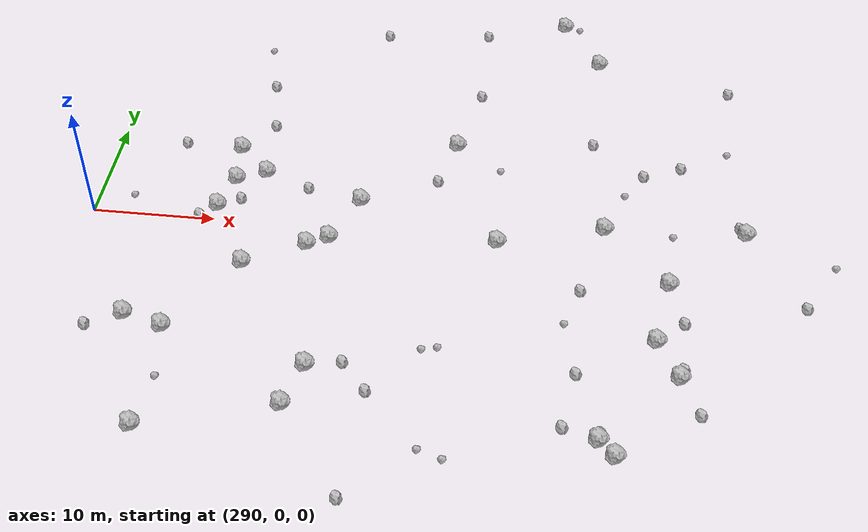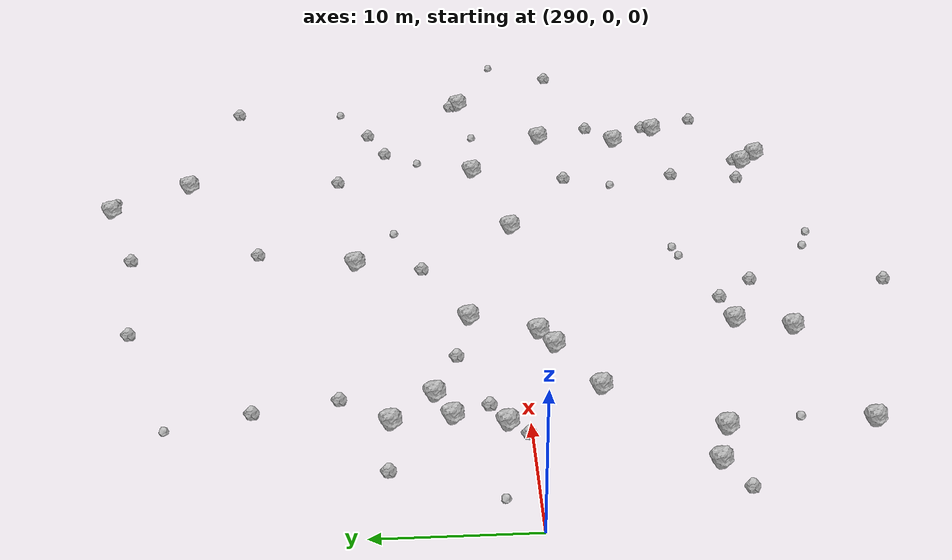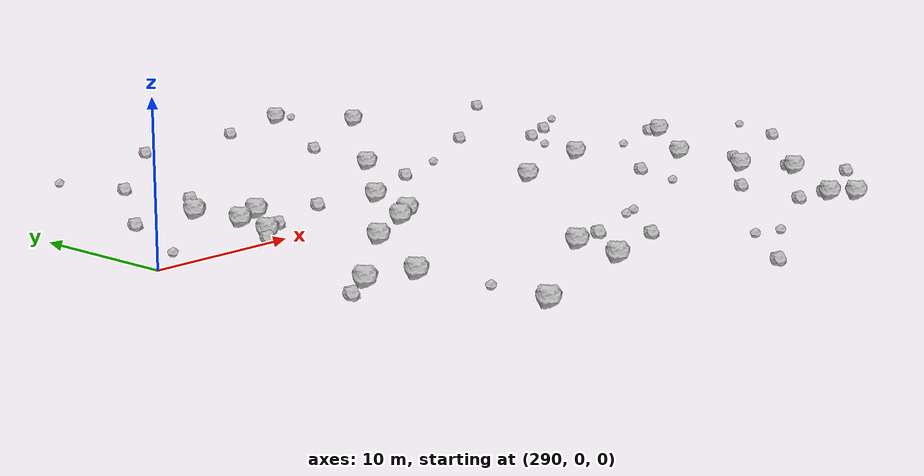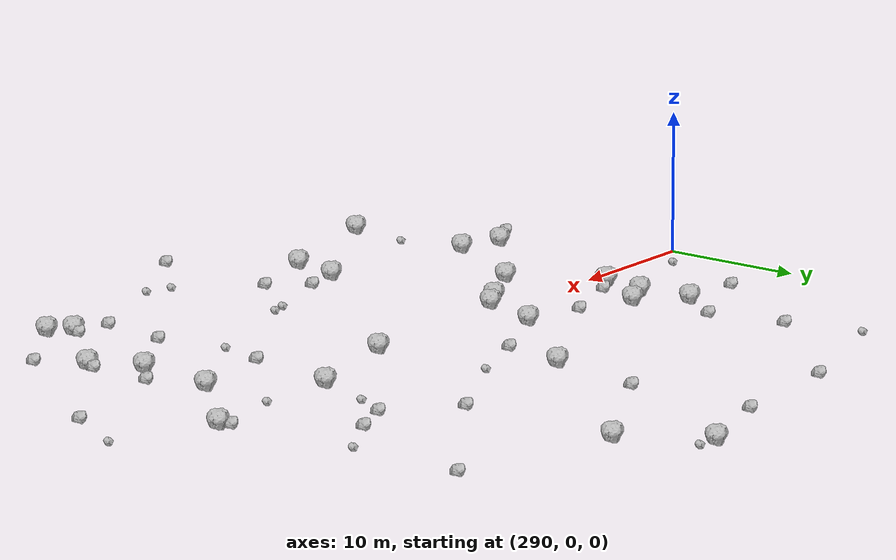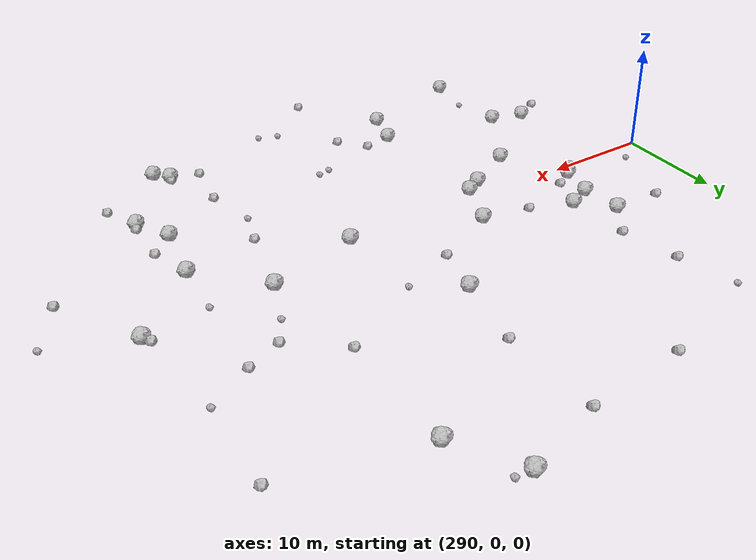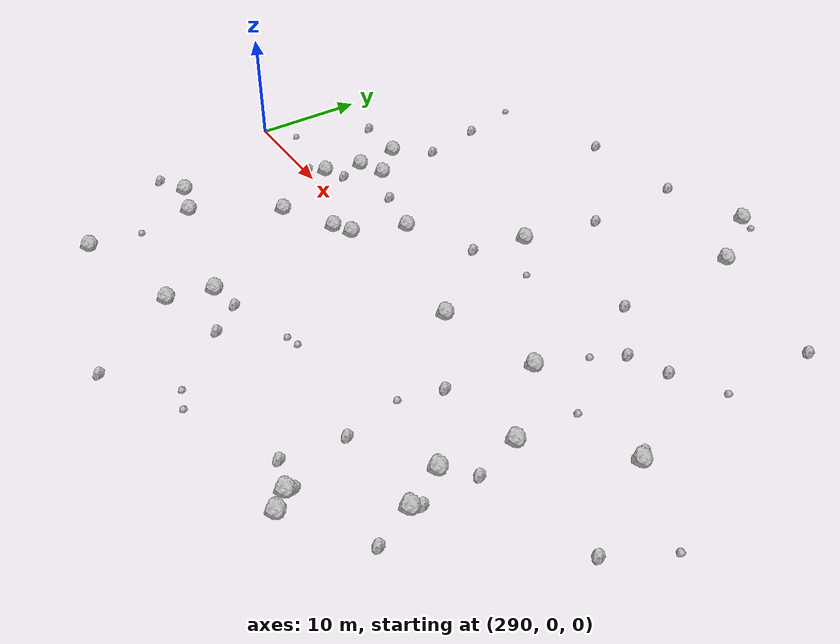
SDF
<sdf version="1.6">
 <world name="default">
  <include><uri>model://sun</uri></include>
  <model name="rock1_8_3">
   <include><uri>model://rock1</uri><pose>336.5665942679127 -3.5034307247280374 0.5 0 0 0</pose></include>
  </model>
  <model name="rock1_8_4">
   <include><uri>model://rock1</uri><pose>322.97241595891603 -0.3006422420678092 0.5 0 0 0</pose></include>
  </model>
  <model name="rock1_8_5">
   <include><uri>model://rock1</uri><pose>331.74783075187156 -18.923567844655718 0.5 0 0 0</pose></include>
  </model>
  <model name="rock1_8_6">
   <include><uri>model://rock1</uri><pose>303.313790783671 -4.70698574601505 0.5 0 0 0</pose></include>
  </model>
  <model name="rock1_8_7">
   <include><uri>model://rock1</uri><pose>298.81193453583427 -11.897874329810428 0.5 0 0 0</pose></include>
  </model>
  <model name="rock1_8_8">
   <include><uri>model://rock1</uri><pose>309.6122203821298 -1.2417844797175093 0.5 0 0 0</pose></include>
  </model>
  <model name="rock1_8_9">
   <include><uri>model://rock1</uri><pose>311.4719844045327 3.2977723977802214 0.5 0 0 0</pose></include>
  </model>
  <model name="rock1_8_10">
   <include><uri>model://rock1</uri><pose>342.6597769959898 2.643494544960106 0.5 0 0 0</pose></include>
  </model>
  <model name="rock1_8_11">
   <include><uri>model://rock1</uri><pose>332.96159411613274 -20.21075818257323 0.5 0 0 0</pose></include>
  </model>
  <model name="rock1_8_12">
   <include><uri>model://rock1</uri><pose>299.0849038229062 -21.147566846116995 0.5 0 0 0</pose></include>
  </model>
  <model name="rock1_8_13">
   <include><uri>model://rock1</uri><pose>309.18747200910946 -18.19630980916593 0.5 0 0 0</pose></include>
  </model>
  <model name="rock1_8_14">
   <include><uri>model://rock1</uri><pose>307.9959416990806 -2.157040065080661 0.5 0 0 0</pose></include>
  </model>
  <model name="rock1_8_15">
   <include><uri>model://rock1</uri><pose>310.2208733488384 -14.451170715032424 0.5 0 0 0</pose></include>
  </model>
  <model name="rock1_8_16">
   <include><uri>model://rock1</uri><pose>326.76990446050513 28.92331002697685 0.5 0 0 0</pose></include>
  </model>
  <model name="rock1_8_17">
   <include><uri>model://rock1</uri><pose>331.3994204328877 2.0637774210288384 0.5 0 0 0</pose></include>
  </model>
  <model name="rock1_8_18">
   <include><uri>model://rock1</uri><pose>300.7896889808558 4.786535628174477 0.5 0 0 0</pose></include>
  </model>
  <model name="rock1_8_19">
   <include><uri>model://rock1</uri><pose>330.1301924906561 23.521071074368322 0.5 0 0 0</pose></include>
  </model>
  <model name="rock1_8_20">
   <include><uri>model://rock1</uri><pose>335.68464430888747 -9.39471408762519 0.5 0 0 0</pose></include>
  </model>
  <model name="rock1_8_21">
   <include><uri>model://rock1</uri><pose>318.5902242311041 10.920998037992348 0.5 0 0 0</pose></include>
  </model>
  <model name="rock1_8_22">
   <include><uri>model://rock1</uri><pose>295.61931665516295 -10.966885124787428 0.5 0 0 0</pose></include>
  </model>
  <model name="rock1_8_23">
   <include><uri>model://rock1</uri><pose>303.11765259668095 5.8389266858747035 0.5 0 0 0</pose></include>
  </model>
  <model name="rock1_8_24">
   <include><uri>model://rock1</uri><pose>299.94958611532655 1.447239279037099 0.5 0 0 0</pose></include>
  </model>
  <model name="rock1_8_25">
   <include><uri>model://rock1</uri><pose>300.39203194390274 8.626362117593501 0.5 0 0 0</pose></include>
  </model>
  <model name="rock1_8_26">
   <include><uri>model://rock1</uri><pose>337.4106444664286 -12.7178958307756 0.5 0 0 0</pose></include>
  </model>
  <model name="rock2_8_0">
   <include><uri>model://rock2</uri><pose>298.71543865284025 0.23604183291170244 0.3 0 0 0</pose></include>
  </model>
  <model name="rock2_8_1">
   <include><uri>model://rock2</uri><pose>341.63419612256297 20.500699458758525 0.3 0 0 0</pose></include>
  </model>
  <model name="rock2_8_2">
   <include><uri>model://rock2</uri><pose>334.3728632196908 8.740577303771474 0.3 0 0 0</pose></include>
  </model>
  <model name="rock2_8_3">
   <include><uri>model://rock2</uri><pose>301.59011248675 17.168882961483746 0.3 0 0 0</pose></include>
  </model>
  <model name="rock2_8_4">
   <include><uri>model://rock2</uri><pose>342.1692367145155 3.345115978706282 0.3 0 0 0</pose></include>
  </model>
  <model name="rock2_8_5">
   <include><uri>model://rock2</uri><pose>319.95766327015895 17.790572103675416 0.3 0 0 0</pose></include>
  </model>
  <model name="rock2_8_6">
   <include><uri>model://rock2</uri><pose>331.8705463874127 -18.32986147704468 0.3 0 0 0</pose></include>
  </model>
  <model name="rock2_8_7">
   <include><uri>model://rock2</uri><pose>329.7675096288521 -4.869496970249656 0.3 0 0 0</pose></include>
  </model>
  <model name="rock2_8_8">
   <include><uri>model://rock2</uri><pose>330.03251629948045 12.30207794598904 0.3 0 0 0</pose></include>
  </model>
  <model name="rock2_8_9">
   <include><uri>model://rock2</uri><pose>346.9499032954944 -4.854854614598029 0.3 0 0 0</pose></include>
  </model>
  <model name="rock2_8_10">
   <include><uri>model://rock2</uri><pose>301.6888680718721 2.4594086520813008 0.3 0 0 0</pose></include>
  </model>
  <model name="rock2_8_11">
   <include><uri>model://rock2</uri><pose>295.5944826098292 8.785680718646724 0.3 0 0 0</pose></include>
  </model>
  <model name="rock2_8_12">
   <include><uri>model://rock2</uri><pose>329.8563795935294 -13.147044170540276 0.3 0 0 0</pose></include>
  </model>
  <model name="rock2_8_13">
   <include><uri>model://rock2</uri><pose>312.8795514259083 -13.914635109576551 0.3 0 0 0</pose></include>
  </model>
  <model name="rock2_8_14">
   <include><uri>model://rock2</uri><pose>337.72766900277145 -7.396039713443759 0.3 0 0 0</pose></include>
  </model>
  <model name="rock2_8_15">
   <include><uri>model://rock2</uri><pose>337.6650279708017 -11.913846667420561 0.3 0 0 0</pose></include>
  </model>
  <model name="rock2_8_16">
   <include><uri>model://rock2</uri><pose>314.4906159831166 -25.644942955349205 0.3 0 0 0</pose></include>
  </model>
  <model name="rock2_8_17">
   <include><uri>model://rock2</uri><pose>306.9498240368069 4.279982292539302 0.3 0 0 0</pose></include>
  </model>
  <model name="rock2_8_18">
   <include><uri>model://rock2</uri><pose>338.8514544934619 -15.973756222121962 0.3 0 0 0</pose></include>
  </model>
  <model name="rock2_8_19">
   <include><uri>model://rock2</uri><pose>317.4572624505095 6.274389345655422 0.3 0 0 0</pose></include>
  </model>
  <model name="rock2_8_20">
   <include><uri>model://rock2</uri><pose>319.7111689769673 26.694875967180906 0.3 0 0 0</pose></include>
  </model>
  <model name="rock2_8_21">
   <include><uri>model://rock2</uri><pose>337.46639943392677 10.051189244694818 0.3 0 0 0</pose></include>
  </model>
  <model name="rock2_8_22">
   <include><uri>model://rock2</uri><pose>329.1464378840008 -18.09055036835379 0.3 0 0 0</pose></include>
  </model>
  <model name="rock2_8_23">
   <include><uri>model://rock2</uri><pose>293.01993972381536 -12.349474944889636 0.3 0 0 0</pose></include>
  </model>
  <model name="rock2_8_24">
   <include><uri>model://rock2</uri><pose>314.95121664835887 -16.384977658453842 0.3 0 0 0</pose></include>
  </model>
  <model name="rock2_8_25">
   <include><uri>model://rock2</uri><pose>302.6794239603575 11.798888014915555 0.3 0 0 0</pose></include>
  </model>
  <model name="rock2_8_26">
   <include><uri>model://rock2</uri><pose>310.5477309237902 25.78362258961625 0.3 0 0 0</pose></include>
  </model>
  <model name="rock3_8_0">
   <include><uri>model://rock3</uri><pose>341.323951391395 12.262265089273903 0.2 0 0 0</pose></include>
  </model>
  <model name="rock3_8_1">
   <include><uri>model://rock3</uri><pose>318.417495881638 -12.013114701583866 0.2 0 0 0</pose></include>
  </model>
  <model name="rock3_8_2">
   <include><uri>model://rock3</uri><pose>336.8311685581478 1.7965602489438446 0.2 0 0 0</pose></include>
  </model>
  <model name="rock3_8_3">
   <include><uri>model://rock3</uri><pose>299.5764015517946 -16.654956088498288 0.2 0 0 0</pose></include>
  </model>
  <model name="rock3_8_4">
   <include><uri>model://rock3</uri><pose>321.13039985408335 -21.718750462618274 0.2 0 0 0</pose></include>
  </model>
  <model name="rock3_8_5">
   <include><uri>model://rock3</uri><pose>292.83266221769964 2.0017345696783764 0.2 0 0 0</pose></include>
  </model>
  <model name="rock3_8_6">
   <include><uri>model://rock3</uri><pose>319.57808151649044 -11.717020371059075 0.2 0 0 0</pose></include>
  </model>
  <model name="rock3_8_7">
   <include><uri>model://rock3</uri><pose>328.0828522058556 28.64548520331683 0.2 0 0 0</pose></include>
  </model>
  <model name="rock3_8_8">
   <include><uri>model://rock3</uri><pose>322.47700229542784 8.131251660970193 0.2 0 0 0</pose></include>
  </model>
  <model name="rock3_8_9">
   <include><uri>model://rock3</uri><pose>332.87550902996736 6.21182246646859 0.2 0 0 0</pose></include>
  </model>
  <model name="rock3_8_10">
   <include><uri>model://rock3</uri><pose>349.44939979094056 -0.2998940847570637 0.2 0 0 0</pose></include>
  </model>
  <model name="rock3_8_11">
   <include><uri>model://rock3</uri><pose>319.2900109208064 -21.07436164104472 0.2 0 0 0</pose></include>
  </model>
  <model name="rock3_8_12">
   <include><uri>model://rock3</uri><pose>328.7215079674648 -8.362647121742697 0.2 0 0 0</pose></include>
  </model>
  <model name="rock3_8_13">
   <include><uri>model://rock3</uri><pose>300.2106380232355 22.375935759836892 0.2 0 0 0</pose></include>
  </model>
 </world>
</sdf>
